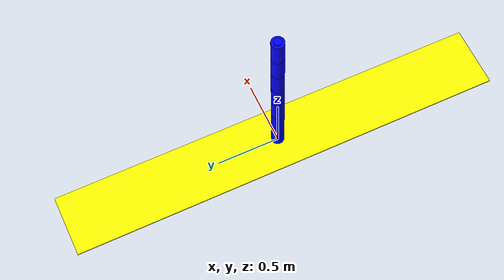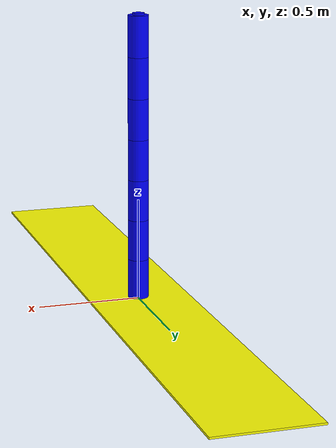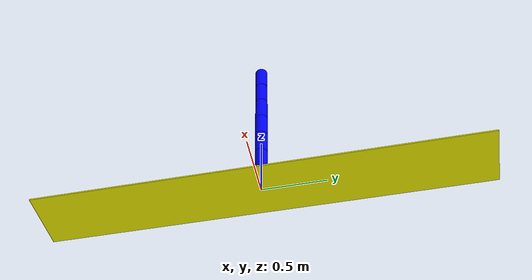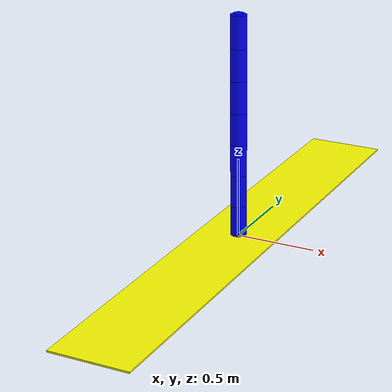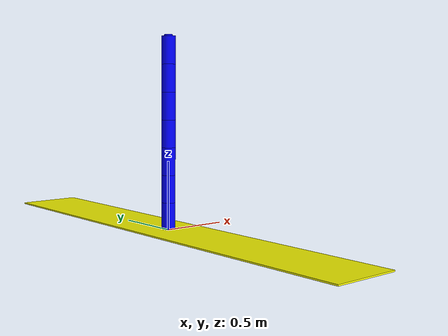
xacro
<?xml version="1.0"?>

<robot name="ex6model_tilt" xmlns:xacro="http://wiki.ros.org/xacro">
    <xacro:include filename="$(find rl_robot_description_pkg)/urdf/ex6model_macro.xacro" />

		<xacro:base_link_macro
			base_link_name="base_link">
		</xacro:base_link_macro>

                <xacro:ex6model_joint
			name="joint0"
			type="prismatic"
			parent="base_link"
			child="link0">
			<origin xyz="0 0 0.005" />
			<axis xyz="0 1 0"/>
		</xacro:ex6model_joint>

		<xacro:ex6model_link name="link0">
			<geometry>
				<cylinder length="0.2" radius="0.05"/>
			</geometry>
			<origin xyz="0 0 0.1" rpy="0 0 0"/>
		</xacro:ex6model_link>

		<xacro:ex6model_joint
			name="joint1"
			type="revolute"
			parent="link0"
			child="link1">
			<origin xyz="0 0 0.2" />
			<axis xyz="0 0 1"/>
		</xacro:ex6model_joint>

		<xacro:ex6model_link name="link1">
			<geometry>
				<cylinder length="0.2" radius="0.05"/>
			</geometry>
			<origin xyz="0 0 0.1" rpy="0 0 0"/>
		</xacro:ex6model_link>

		<xacro:ex6model_joint
			name="joint2"
			type="revolute"
			parent="link1"
			child="link2">
			<origin xyz="0 0 0.2" />
			<axis xyz="0 1 0"/>
		</xacro:ex6model_joint>

		<xacro:ex6model_link name="link2">
			<geometry>
				<cylinder length="0.2" radius="0.05"/>
			</geometry>
			<origin xyz="0 0 0.1" rpy="0 0 0"/>
		</xacro:ex6model_link>

                <xacro:ex6model_joint
			name="joint3"
			type="revolute"
			parent="link2"
			child="link3">
			<origin xyz="0 0 0.2" />
			<axis xyz="0 0 1"/>
		</xacro:ex6model_joint>

		<xacro:ex6model_link name="link3">
			<geometry>
				<cylinder length="0.2" radius="0.05"/>
			</geometry>
			<origin xyz="0 0 0.1" rpy="0 0 0"/>
		</xacro:ex6model_link>

                <xacro:ex6model_joint
			name="joint4"
			type="revolute"
			parent="link3"
			child="link4">
			<origin xyz="0 0 0.2" />
			<axis xyz="0 1 0"/>
		</xacro:ex6model_joint>

		<xacro:ex6model_link name="link4">
			<geometry>
				<cylinder length="0.2" radius="0.05"/>
			</geometry>
			<origin xyz="0 0 0.1" rpy="0 0 0"/>
		</xacro:ex6model_link>

                <xacro:ex6model_joint
			name="joint5"
			type="revolute"
			parent="link4"
			child="link5">
			<origin xyz="0 0 0.2" />
			<axis xyz="0 0 1"/>
		</xacro:ex6model_joint>

		<xacro:ex6model_link name="link5">
			<geometry>
				<cylinder length="0.2" radius="0.05"/>
			</geometry>
			<origin xyz="0 0 0.1" rpy="0 0 0"/>
		</xacro:ex6model_link>

                <xacro:ex6model_joint
			name="joint6"
			type="revolute"
			parent="link5"
			child="link6">
			<origin xyz="0 0 0.2" />
			<axis xyz="0 1 0"/>
		</xacro:ex6model_joint>

		<xacro:ex6model_link name="link6">
			<geometry>
				<cylinder length="0.2" radius="0.05"/>
			</geometry>
			<origin xyz="0 0 0.1" rpy="0 0 0"/>
		</xacro:ex6model_link>

                <xacro:ex6model_joint
			name="joint7"
			type="revolute"
			parent="link6"
			child="link7">
			<origin xyz="0 0 0.2" />
			<axis xyz="0 0 1"/>
		</xacro:ex6model_joint>

		<xacro:ex6model_link name="link7">
			<geometry>
				<cylinder length="0.01" radius="0.03"/>
			</geometry>
			<origin xyz="0 0 0.005" rpy="0 0 0"/>
		</xacro:ex6model_link>

</robot>

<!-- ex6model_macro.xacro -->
<robot name="ex6model_macro" xmlns:xacro="http://wiki.ros.org/xacro">

	<xacro:macro name="base_link_macro" params="base_link_name">
		<link name="${base_link_name}">
			<visual>
				<geometry>
					<box size="0.5 3.5 0.01"/>
				</geometry>
				<origin rpy="0 0 0" xyz="0 0 0.005"/>
					<material name="yellow">
						<color rgba="1 1 0 1"/>
					</material>
			</visual>
			<collision>
				<geometry>
					<cylinder length="0.3" radius="0.08"/>
				</geometry>
				<origin rpy="0 0 0" xyz="0 0 0.1"/>
			</collision>
			<inertial>
				<mass value="1"/>
					<inertia ixx="1.0" ixy="0.0" ixz="0.0" iyy="1.0" iyz="0.0" izz="1.0"/>
					</inertial>
		</link>
	</xacro:macro>

     	<xacro:macro name="ex6model_joint" params="name type parent child *origin *axis">
		<joint name="${name}" type="${type}">
			<parent link="${parent}" />
			<child link="${child}" />
	    <xacro:insert_block name="origin" />
			<xacro:insert_block name="axis" />
	    <limit effort="300" velocity="0.1" lower="-1.57" upper="1.57"/>
	    <dynamics damping="50" friction="1"/>
		</joint>
	</xacro:macro>

	<xacro:macro name="ex6model_link" params="name *geometry *origin">
		<link name="${name}">
			<visual>
				<xacro:insert_block name="geometry" />
				<xacro:insert_block name="origin" />
		    <material name="red">
		      <color rgba="0 0 1 1"/>
		    </material>
		  </visual>
		  <collision>
				<xacro:insert_block name="geometry" />
				<xacro:insert_block name="origin" />
			</collision>
			<inertial>
				<mass value="1"/>
					<inertia ixx="1.0" ixy="0.0" ixz="0.0" iyy="1.0" iyz="0.0" izz="1.0"/>
		  </inertial>
	  </link>
	</xacro:macro>

</robot>
